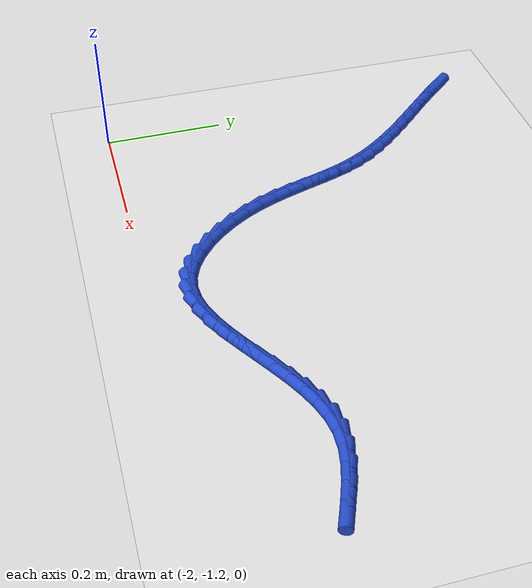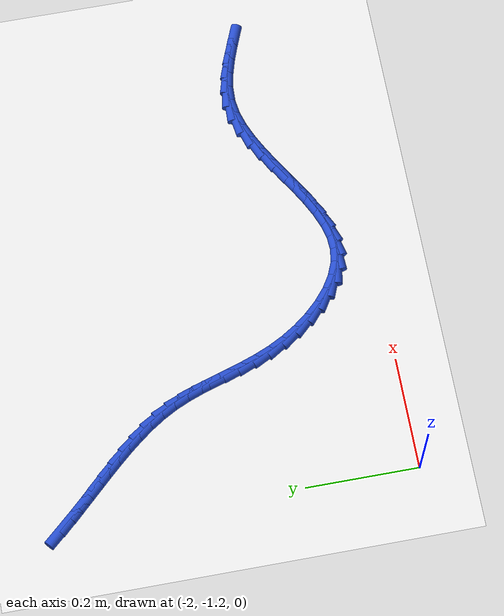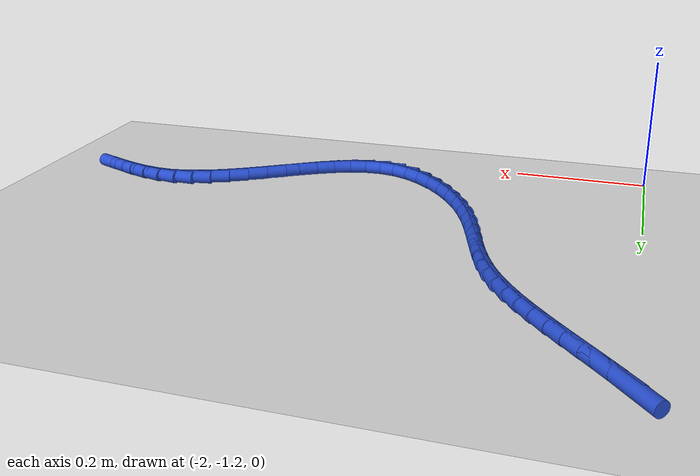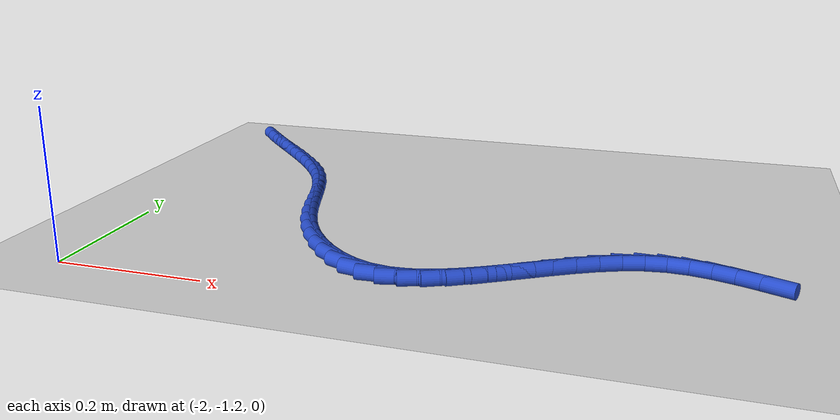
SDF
<sdf version="1.6">
 <world name="default">
  <model name="ground_plane">
   <static>1</static>
   <link name="link">
    <collision name="collision">
     <geometry><plane><normal>0 0 1</normal><size>100 100</size></plane></geometry>
     <surface><friction><ode><mu>100</mu><mu2>50</mu2></ode></friction></surface>
    </collision>
    <visual name="visual">
     <cast_shadows>0</cast_shadows>
     <geometry><plane><normal>0 0 1</normal><size>100 100</size></plane></geometry>
     <material>
      <script><uri>file://media/materials/scripts/gazebo.material</uri><name>Gazebo/WhiteGlow</name></script>
     </material>
    </visual>
   </link>
  </model>
  <model name="line">
   <link name="link_143">
    <pose>-1.9964332401016693 -0.5847127211558832 0.01 0 1.57 -0.8457600618358534</pose>
    <collision name="collision">
     <geometry><cylinder><radius>0.01</radius><length>0.08</length></cylinder></geometry>
    </collision>
    <visual name="visual">
     <material>
      <script><name>Gazebo/Blue</name><uri>file://media/materials/scripts/gazebo.material</uri></script>
     </material>
     <geometry><cylinder><radius>0.01</radius><length>0.08</length></cylinder></geometry>
    </visual>
   </link>
   <link name="link_144">
    <pose>-1.9773365775980518 -0.6062660805865797 0.01 0 1.57 -0.8242576406976012</pose>
    <collision name="collision">
     <geometry><cylinder><radius>0.01</radius><length>0.08</length></cylinder></geometry>
    </collision>
    <visual name="visual">
     <material>
      <script><name>Gazebo/Blue</name><uri>file://media/materials/scripts/gazebo.material</uri></script>
     </material>
     <geometry><cylinder><radius>0.01</radius><length>0.08</length></cylinder></geometry>
    </visual>
   </link>
   <link name="link_145">
    <pose>-1.9576358113716268 -0.6275607087673424 0.01 0 1.57 -0.8139447338288108</pose>
    <collision name="collision">
     <geometry><cylinder><radius>0.01</radius><length>0.08</length></cylinder></geometry>
    </collision>
    <visual name="visual">
     <material>
      <script><name>Gazebo/Blue</name><uri>file://media/materials/scripts/gazebo.material</uri></script>
     </material>
     <geometry><cylinder><radius>0.01</radius><length>0.08</length></cylinder></geometry>
    </visual>
   </link>
   <link name="link_146">
    <pose>-1.9376431587188332 -0.6487286752064056 0.01 0 1.57 -0.8145801092011299</pose>
    <collision name="collision">
     <geometry><cylinder><radius>0.01</radius><length>0.08</length></cylinder></geometry>
    </collision>
    <visual name="visual">
     <material>
      <script><name>Gazebo/Blue</name><uri>file://media/materials/scripts/gazebo.material</uri></script>
     </material>
     <geometry><cylinder><radius>0.01</radius><length>0.08</length></cylinder></geometry>
    </visual>
   </link>
   <link name="link_147">
    <pose>-1.9176708369361084 -0.6699020494120007 0.01 0 1.57 -0.8261826743457051</pose>
    <collision name="collision">
     <geometry><cylinder><radius>0.01</radius><length>0.08</length></cylinder></geometry>
    </collision>
    <visual name="visual">
     <material>
      <script><name>Gazebo/Blue</name><uri>file://media/materials/scripts/gazebo.material</uri></script>
     </material>
     <geometry><cylinder><radius>0.01</radius><length>0.08</length></cylinder></geometry>
    </visual>
   </link>
   <link name="link_148">
    <pose>-1.8980310633198905 -0.6912129008923604 0.01 0 1.57 -0.8490302977157367</pose>
    <collision name="collision">
     <geometry><cylinder><radius>0.01</radius><length>0.08</length></cylinder></geometry>
    </collision>
    <visual name="visual">
     <material>
      <script><name>Gazebo/Blue</name><uri>file://media/materials/scripts/gazebo.material</uri></script>
     </material>
     <geometry><cylinder><radius>0.01</radius><length>0.08</length></cylinder></geometry>
    </visual>
   </link>
   <link name="link_149">
    <pose>-1.8790360551666163 -0.7127932991557165 0.01 0 1.57 -0.8836313191717283</pose>
    <collision name="collision">
     <geometry><cylinder><radius>0.01</radius><length>0.08</length></cylinder></geometry>
    </collision>
    <visual name="visual">
     <material>
      <script><name>Gazebo/Blue</name><uri>file://media/materials/scripts/gazebo.material</uri></script>
     </material>
     <geometry><cylinder><radius>0.01</radius><length>0.08</length></cylinder></geometry>
    </visual>
   </link>
   <link name="link_150">
    <pose>-1.8609980297727244 -0.734775313710302 0.01 0 1.57 -0.9306563376271128</pose>
    <collision name="collision">
     <geometry><cylinder><radius>0.01</radius><length>0.08</length></cylinder></geometry>
    </collision>
    <visual name="visual">
     <material>
      <script><name>Gazebo/Blue</name><uri>file://media/materials/scripts/gazebo.material</uri></script>
     </material>
     <geometry><cylinder><radius>0.01</radius><length>0.08</length></cylinder></geometry>
    </visual>
   </link>
   <link name="link_151">
    <pose>-1.8442292044346518 -0.757291014064349 0.01 0 1.57 -0.9908069015441651</pose>
    <collision name="collision">
     <geometry><cylinder><radius>0.01</radius><length>0.08</length></cylinder></geometry>
    </collision>
    <visual name="visual">
     <material>
      <script><name>Gazebo/Blue</name><uri>file://media/materials/scripts/gazebo.material</uri></script>
     </material>
     <geometry><cylinder><radius>0.01</radius><length>0.08</length></cylinder></geometry>
    </visual>
   </link>
   <link name="link_152">
    <pose>-1.829041796448836 -0.7804724697260894 0.01 0 1.57 -1.0645921122874842</pose>
    <collision name="collision">
     <geometry><cylinder><radius>0.01</radius><length>0.08</length></cylinder></geometry>
    </collision>
    <visual name="visual">
     <material>
      <script><name>Gazebo/Blue</name><uri>file://media/materials/scripts/gazebo.material</uri></script>
     </material>
     <geometry><cylinder><radius>0.01</radius><length>0.08</length></cylinder></geometry>
    </visual>
   </link>
   <link name="link_153">
    <pose>-1.8157480231117151 -0.8044517502037563 0.01 0 1.57 -1.147976044475173</pose>
    <collision name="collision">
     <geometry><cylinder><radius>0.01</radius><length>0.08</length></cylinder></geometry>
    </collision>
    <visual name="visual">
     <material>
      <script><name>Gazebo/Blue</name><uri>file://media/materials/scripts/gazebo.material</uri></script>
     </material>
     <geometry><cylinder><radius>0.01</radius><length>0.08</length></cylinder></geometry>
    </visual>
   </link>
   <link name="link_154">
    <pose>-1.8045549623170636 -0.8293274550214884 0.01 0 1.57 -1.2155034832141158</pose>
    <collision name="collision">
     <geometry><cylinder><radius>0.01</radius><length>0.08</length></cylinder></geometry>
    </collision>
    <visual name="visual">
     <material>
      <script><name>Gazebo/Blue</name><uri>file://media/materials/scripts/gazebo.material</uri></script>
     </material>
     <geometry><cylinder><radius>0.01</radius><length>0.08</length></cylinder></geometry>
    </visual>
   </link>
   <link name="link_155">
    <pose>-1.7950313327279297 -0.8549949689927 0.01 0 1.57 -1.2570939489684771</pose>
    <collision name="collision">
     <geometry><cylinder><radius>0.01</radius><length>0.08</length></cylinder></geometry>
    </collision>
    <visual name="visual">
     <material>
      <script><name>Gazebo/Blue</name><uri>file://media/materials/scripts/gazebo.material</uri></script>
     </material>
     <geometry><cylinder><radius>0.01</radius><length>0.08</length></cylinder></geometry>
    </visual>
   </link>
   <link name="link_156">
    <pose>-1.7865062265603715 -0.8812733944604284 0.01 0 1.57 -1.27298235363188</pose>
    <collision name="collision">
     <geometry><cylinder><radius>0.01</radius><length>0.08</length></cylinder></geometry>
    </collision>
    <visual name="visual">
     <material>
      <script><name>Gazebo/Blue</name><uri>file://media/materials/scripts/gazebo.material</uri></script>
     </material>
     <geometry><cylinder><radius>0.01</radius><length>0.08</length></cylinder></geometry>
    </visual>
   </link>
   <link name="link_157">
    <pose>-1.7783083089155618 -0.907981697800338 0.01 0 1.57 -1.2639300699036462</pose>
    <collision name="collision">
     <geometry><cylinder><radius>0.01</radius><length>0.08</length></cylinder></geometry>
    </collision>
    <visual name="visual">
     <material>
      <script><name>Gazebo/Blue</name><uri>file://media/materials/scripts/gazebo.material</uri></script>
     </material>
     <geometry><cylinder><radius>0.01</radius><length>0.08</length></cylinder></geometry>
    </visual>
   </link>
   <link name="link_158">
    <pose>-1.7697662448946712 -0.9349388453880921 0.01 0 1.57 -1.2308679923966084</pose>
    <collision name="collision">
     <geometry><cylinder><radius>0.01</radius><length>0.08</length></cylinder></geometry>
    </collision>
    <visual name="visual">
     <material>
      <script><name>Gazebo/Blue</name><uri>file://media/materials/scripts/gazebo.material</uri></script>
     </material>
     <geometry><cylinder><radius>0.01</radius><length>0.08</length></cylinder></geometry>
    </visual>
   </link>
   <link name="link_159">
    <pose>-1.7602086995988728 -0.961963803599355 0.01 0 1.57 -1.17501971582615</pose>
    <collision name="collision">
     <geometry><cylinder><radius>0.01</radius><length>0.08</length></cylinder></geometry>
    </collision>
    <visual name="visual">
     <material>
      <script><name>Gazebo/Blue</name><uri>file://media/materials/scripts/gazebo.material</uri></script>
     </material>
     <geometry><cylinder><radius>0.01</radius><length>0.08</length></cylinder></geometry>
    </visual>
   </link>
   <link name="link_160">
    <pose>-1.7489643381293387 -0.9888755388097906 0.01 0 1.57 -1.098384803314379</pose>
    <collision name="collision">
     <geometry><cylinder><radius>0.01</radius><length>0.08</length></cylinder></geometry>
    </collision>
    <visual name="visual">
     <material>
      <script><name>Gazebo/Blue</name><uri>file://media/materials/scripts/gazebo.material</uri></script>
     </material>
     <geometry><cylinder><radius>0.01</radius><length>0.08</length></cylinder></geometry>
    </visual>
   </link>
   <link name="link_161">
    <pose>-1.7353631462373094 -1.015492176049868 0.01 0 1.57 -1.0091271978170615</pose>
    <collision name="collision">
     <geometry><cylinder><radius>0.01</radius><length>0.08</length></cylinder></geometry>
    </collision>
    <visual name="visual">
     <material>
      <script><name>Gazebo/Blue</name><uri>file://media/materials/scripts/gazebo.material</uri></script>
     </material>
     <geometry><cylinder><radius>0.01</radius><length>0.08</length></cylinder></geometry>
    </visual>
   </link>
   <link name="link_162">
    <pose>-1.7190337914367626 -1.0414415594632944 0.01 0 1.57 -0.9170876965070228</pose>
    <collision name="collision">
     <geometry><cylinder><radius>0.01</radius><length>0.08</length></cylinder></geometry>
    </collision>
    <visual name="visual">
     <material>
      <script><name>Gazebo/Blue</name><uri>file://media/materials/scripts/gazebo.material</uri></script>
     </material>
     <geometry><cylinder><radius>0.01</radius><length>0.08</length></cylinder></geometry>
    </visual>
   </link>
   <link name="link_163">
    <pose>-1.7002807679877918 -1.0659209849360962 0.01 0 1.57 -0.817262310313259</pose>
    <collision name="collision">
     <geometry><cylinder><radius>0.01</radius><length>0.08</length></cylinder></geometry>
    </collision>
    <visual name="visual">
     <material>
      <script><name>Gazebo/Blue</name><uri>file://media/materials/scripts/gazebo.material</uri></script>
     </material>
     <geometry><cylinder><radius>0.01</radius><length>0.08</length></cylinder></geometry>
    </visual>
   </link>
   <link name="link_164">
    <pose>-1.679501493223893 -1.0880685499464529 0.01 0 1.57 -0.7020773189540257</pose>
    <collision name="collision">
     <geometry><cylinder><radius>0.01</radius><length>0.08</length></cylinder></geometry>
    </collision>
    <visual name="visual">
     <material>
      <script><name>Gazebo/Blue</name><uri>file://media/materials/scripts/gazebo.material</uri></script>
     </material>
     <geometry><cylinder><radius>0.01</radius><length>0.08</length></cylinder></geometry>
    </visual>
   </link>
   <link name="link_165">
    <pose>-1.6570933844785596 -1.1070223519725433 0.01 0 1.57 -0.5623452743009218</pose>
    <collision name="collision">
     <geometry><cylinder><radius>0.01</radius><length>0.08</length></cylinder></geometry>
    </collision>
    <visual name="visual">
     <material>
      <script><name>Gazebo/Blue</name><uri>file://media/materials/scripts/gazebo.material</uri></script>
     </material>
     <geometry><cylinder><radius>0.01</radius><length>0.08</length></cylinder></geometry>
    </visual>
   </link>
   <link name="link_166">
    <pose>-1.633453859085286 -1.1219204884925467 0.01 0 1.57 -0.38722166553541054</pose>
    <collision name="collision">
     <geometry><cylinder><radius>0.01</radius><length>0.08</length></cylinder></geometry>
    </collision>
    <visual name="visual">
     <material>
      <script><name>Gazebo/Blue</name><uri>file://media/materials/scripts/gazebo.material</uri></script>
     </material>
     <geometry><cylinder><radius>0.01</radius><length>0.08</length></cylinder></geometry>
    </visual>
   </link>
   <link name="link_167">
    <pose>-1.6089803343775684 -1.1319010569846422 0.01 0 1.57 -0.1688154015893644</pose>
    <collision name="collision">
     <geometry><cylinder><radius>0.01</radius><length>0.08</length></cylinder></geometry>
    </collision>
    <visual name="visual">
     <material>
      <script><name>Gazebo/Blue</name><uri>file://media/materials/scripts/gazebo.material</uri></script>
     </material>
     <geometry><cylinder><radius>0.01</radius><length>0.08</length></cylinder></geometry>
    </visual>
   </link>
   <link name="link_168">
    <pose>-1.5840601639324392 -1.136148390171264 0.01 0 1.57 0.05595452378923441</pose>
    <collision name="collision">
     <geometry><cylinder><radius>0.01</radius><length>0.08</length></cylinder></geometry>
    </collision>
    <visual name="visual">
     <material>
      <script><name>Gazebo/Blue</name><uri>file://media/materials/scripts/gazebo.material</uri></script>
     </material>
     <geometry><cylinder><radius>0.01</radius><length>0.08</length></cylinder></geometry>
    </visual>
   </link>
   <link name="link_169">
    <pose>-1.5588866481765717 -1.1347383462048053 0.01 0 1.57 0.23882030102331203</pose>
    <collision name="collision">
     <geometry><cylinder><radius>0.01</radius><length>0.08</length></cylinder></geometry>
    </collision>
    <visual name="visual">
     <material>
      <script><name>Gazebo/Blue</name><uri>file://media/materials/scripts/gazebo.material</uri></script>
     </material>
     <geometry><cylinder><radius>0.01</radius><length>0.08</length></cylinder></geometry>
    </visual>
   </link>
   <link name="link_170">
    <pose>-1.5334777912533202 -1.1285521352459333 0.01 0 1.57 0.37373576617635923</pose>
    <collision name="collision">
     <geometry><cylinder><radius>0.01</radius><length>0.08</length></cylinder></geometry>
    </collision>
    <visual name="visual">
     <material>
      <script><name>Gazebo/Blue</name><uri>file://media/materials/scripts/gazebo.material</uri></script>
     </material>
     <geometry><cylinder><radius>0.01</radius><length>0.08</length></cylinder></geometry>
    </visual>
   </link>
   <link name="link_171">
    <pose>-1.5078452970793137 -1.1184999121662318 0.01 0 1.57 0.46630202756804556</pose>
    <collision name="collision">
     <geometry><cylinder><radius>0.01</radius><length>0.08</length></cylinder></geometry>
    </collision>
    <visual name="visual">
     <material>
      <script><name>Gazebo/Blue</name><uri>file://media/materials/scripts/gazebo.material</uri></script>
     </material>
     <geometry><cylinder><radius>0.01</radius><length>0.08</length></cylinder></geometry>
    </visual>
   </link>
   <link name="link_172">
    <pose>-1.4820008695711824 -1.105491831837284 0.01 0 1.57 0.5240851020777421</pose>
    <collision name="collision">
     <geometry><cylinder><radius>0.01</radius><length>0.08</length></cylinder></geometry>
    </collision>
    <visual name="visual">
     <material>
      <script><name>Gazebo/Blue</name><uri>file://media/materials/scripts/gazebo.material</uri></script>
     </material>
     <geometry><cylinder><radius>0.01</radius><length>0.08</length></cylinder></geometry>
    </visual>
   </link>
   <link name="link_173">
    <pose>-1.4559562126455543 -1.0904380491306738 0.01 0 1.57 0.5529212413380512</pose>
    <collision name="collision">
     <geometry><cylinder><radius>0.01</radius><length>0.08</length></cylinder></geometry>
    </collision>
    <visual name="visual">
     <material>
      <script><name>Gazebo/Blue</name><uri>file://media/materials/scripts/gazebo.material</uri></script>
     </material>
     <geometry><cylinder><radius>0.01</radius><length>0.08</length></cylinder></geometry>
    </visual>
   </link>
   <link name="link_174">
    <pose>-1.42972303021906 -1.0742487189179846 0.01 0 1.57 0.5561032299372898</pose>
    <collision name="collision">
     <geometry><cylinder><radius>0.01</radius><length>0.08</length></cylinder></geometry>
    </collision>
    <visual name="visual">
     <material>
      <script><name>Gazebo/Blue</name><uri>file://media/materials/scripts/gazebo.material</uri></script>
     </material>
     <geometry><cylinder><radius>0.01</radius><length>0.08</length></cylinder></geometry>
    </visual>
   </link>
   <link name="link_175">
    <pose>-1.4033130262083284 -1.0578339960708 0.01 0 1.57 0.534446400195118</pose>
    <collision name="collision">
     <geometry><cylinder><radius>0.01</radius><length>0.08</length></cylinder></geometry>
    </collision>
    <visual name="visual">
     <material>
      <script><name>Gazebo/Blue</name><uri>file://media/materials/scripts/gazebo.material</uri></script>
     </material>
     <geometry><cylinder><radius>0.01</radius><length>0.08</length></cylinder></geometry>
    </visual>
   </link>
   <link name="link_176">
    <pose>-1.3767379045299897 -1.0421040354607043 0.01 0 1.57 0.4864503337706274</pose>
    <collision name="collision">
     <geometry><cylinder><radius>0.01</radius><length>0.08</length></cylinder></geometry>
    </collision>
    <visual name="visual">
     <material>
      <script><name>Gazebo/Blue</name><uri>file://media/materials/scripts/gazebo.material</uri></script>
     </material>
     <geometry><cylinder><radius>0.01</radius><length>0.08</length></cylinder></geometry>
    </visual>
   </link>
   <link name="link_177">
    <pose>-1.3500093691006718 -1.0279689919592798 0.01 0 1.57 0.40847531660407543</pose>
    <collision name="collision">
     <geometry><cylinder><radius>0.01</radius><length>0.08</length></cylinder></geometry>
    </collision>
    <visual name="visual">
     <material>
      <script><name>Gazebo/Blue</name><uri>file://media/materials/scripts/gazebo.material</uri></script>
     </material>
     <geometry><cylinder><radius>0.01</radius><length>0.08</length></cylinder></geometry>
    </visual>
   </link>
   <link name="link_178">
    <pose>-1.323139123837005 -1.0163390204381106 0.01 0 1.57 0.2953485305186359</pose>
    <collision name="collision">
     <geometry><cylinder><radius>0.01</radius><length>0.08</length></cylinder></geometry>
    </collision>
    <visual name="visual">
     <material>
      <script><name>Gazebo/Blue</name><uri>file://media/materials/scripts/gazebo.material</uri></script>
     </material>
     <geometry><cylinder><radius>0.01</radius><length>0.08</length></cylinder></geometry>
    </visual>
   </link>
   <link name="link_179">
    <pose>-1.2961388726556187 -1.008124275768781 0.01 0 1.57 0.14245897281955264</pose>
    <collision name="collision">
     <geometry><cylinder><radius>0.01</radius><length>0.08</length></cylinder></geometry>
    </collision>
    <visual name="visual">
     <material>
      <script><name>Gazebo/Blue</name><uri>file://media/materials/scripts/gazebo.material</uri></script>
     </material>
     <geometry><cylinder><radius>0.01</radius><length>0.08</length></cylinder></geometry>
    </visual>
   </link>
   <link name="link_180">
    <pose>-1.2690203215368354 -1.0042346463918126 0.01 0 1.57 -0.034064754406279</pose>
    <collision name="collision">
     <geometry><cylinder><radius>0.01</radius><length>0.08</length></cylinder></geometry>
    </collision>
    <visual name="visual">
     <material>
      <script><name>Gazebo/Blue</name><uri>file://media/materials/scripts/gazebo.material</uri></script>
     </material>
     <geometry><cylinder><radius>0.01</radius><length>0.08</length></cylinder></geometry>
    </visual>
   </link>
   <link name="link_181">
    <pose>-1.2417984118986085 -1.0051623129095966 0.01 0 1.57 -0.18022950859380207</pose>
    <collision name="collision">
     <geometry><cylinder><radius>0.01</radius><length>0.08</length></cylinder></geometry>
    </collision>
    <visual name="visual">
     <material>
      <script><name>Gazebo/Blue</name><uri>file://media/materials/scripts/gazebo.material</uri></script>
     </material>
     <geometry><cylinder><radius>0.01</radius><length>0.08</length></cylinder></geometry>
    </visual>
   </link>
   <link name="link_182">
    <pose>-1.2144978664396084 -1.0101366537654595 0.01 0 1.57 -0.2849674790951669</pose>
    <collision name="collision">
     <geometry><cylinder><radius>0.01</radius><length>0.08</length></cylinder></geometry>
    </collision>
    <visual name="visual">
     <material>
      <script><name>Gazebo/Blue</name><uri>file://media/materials/scripts/gazebo.material</uri></script>
     </material>
     <geometry><cylinder><radius>0.01</radius><length>0.08</length></cylinder></geometry>
    </visual>
   </link>
   <link name="link_183">
    <pose>-1.1871452490873613 -1.0181493374505568 0.01 0 1.57 -0.35157515450885757</pose>
    <collision name="collision">
     <geometry><cylinder><radius>0.01</radius><length>0.08</length></cylinder></geometry>
    </collision>
    <visual name="visual">
     <material>
      <script><name>Gazebo/Blue</name><uri>file://media/materials/scripts/gazebo.material</uri></script>
     </material>
     <geometry><cylinder><radius>0.01</radius><length>0.08</length></cylinder></geometry>
    </visual>
   </link>
   <link name="link_184">
    <pose>-1.1597671237693914 -1.0281920324560445 0.01 0 1.57 -0.38407670812880074</pose>
    <collision name="collision">
     <geometry><cylinder><radius>0.01</radius><length>0.08</length></cylinder></geometry>
    </collision>
    <visual name="visual">
     <material>
      <script><name>Gazebo/Blue</name><uri>file://media/materials/scripts/gazebo.material</uri></script>
     </material>
     <geometry><cylinder><radius>0.01</radius><length>0.08</length></cylinder></geometry>
    </visual>
   </link>
  </model>
 </world>
</sdf>
